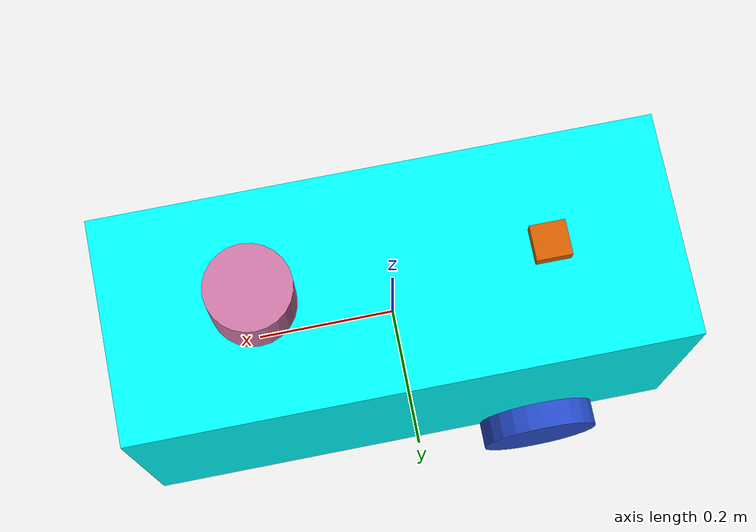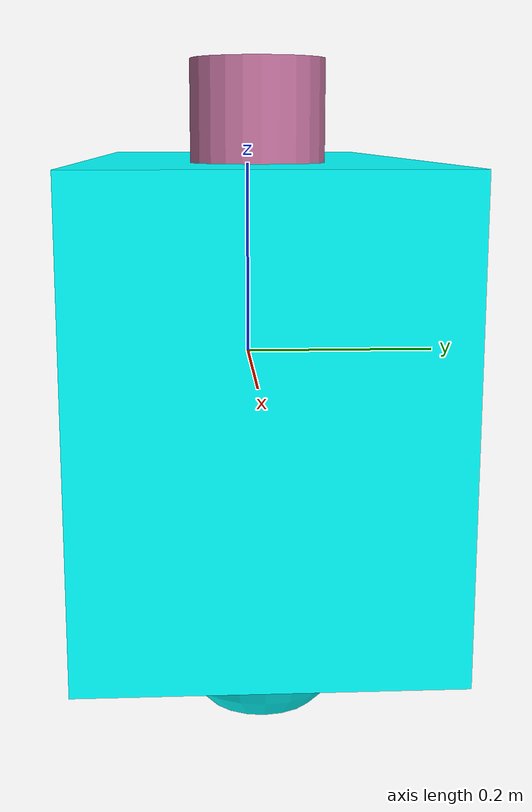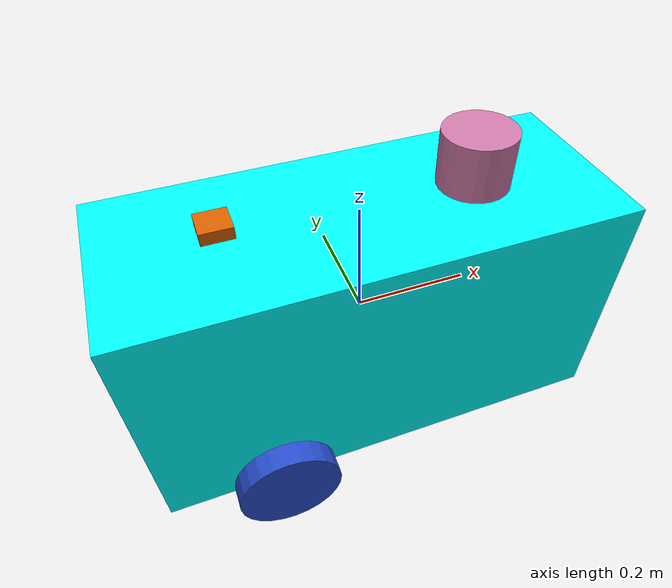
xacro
<?xml version="1.0"?>

<robot name="sam_bot" xmlns:xacro="http://ros.org/wiki/xacro">

  <!-- Define robot constants -->

  <xacro:property name="base_width" value="0.32"/>
  <xacro:property name="base_length" value="0.8"/>
  <xacro:property name="base_height" value="0.41"/>

  <xacro:property name="wheel_radius" value="0.09"/>
  <xacro:property name="wheel_mass" value="1"/>
  <xacro:property name="wheel_width" value="0.04"/>
  <xacro:property name="wheel_ygap" value="0.04"/>
  <xacro:property name="wheel_zoff" value="0.20"/>
  <xacro:property name="wheel_xoff" value="0.20"/>

  <xacro:property name="caster_xoff" value="0.25"/>

  <!-- Define some commonly used intertial properties  -->
  <xacro:macro name="box_inertia" params="m w h d">
    <inertial>
      <origin xyz="0 0 0" rpy="${pi/2} 0 ${pi/2}"/>
      <mass value="${m}"/>
      <inertia ixx="${(m/12) * (h*h + d*d)}" ixy="0.0" ixz="0.0" iyy="${(m/12) * (w*w + d*d)}" iyz="0.0" izz="${(m/12) * (w*w + h*h)}"/>
    </inertial>
  </xacro:macro>

  <xacro:macro name="cylinder_inertia" params="m r h">
    <inertial>
      <origin xyz="0 0 0" rpy="${pi/2} 0 0" />
      <mass value="${m}"/>
      <inertia ixx="${(m/12) * (3*r*r + h*h)}" ixy = "0" ixz = "0" iyy="${(m/12) * (3*r*r + h*h)}" iyz = "0" izz="${(m/2) * (r*r)}"/>
    </inertial>
  </xacro:macro>

  <xacro:macro name="sphere_inertia" params="m r">
    <inertial>
      <mass value="${m}"/>
      <inertia ixx="${(2/5) * m * (r*r)}" ixy="0.0" ixz="0.0" iyy="${(2/5) * m * (r*r)}" iyz="0.0" izz="${(2/5) * m * (r*r)}"/>
    </inertial>
  </xacro:macro>

  <!-- Robot Base -->
  <link name="base_link">
    <visual>
      <geometry>
        <box size="${base_length} ${base_width} ${base_height}"/>
      </geometry>
      <material name="Cyan">
        <color rgba="0 1.0 1.0 1.0"/>
      </material>
    </visual>

    <collision>
      <geometry>
        <box size="${base_length} ${base_width} ${base_height}"/>
      </geometry>
    </collision>

    <xacro:box_inertia m="1" w="${base_width}" d="${base_length}" h="${base_height}"/>
  </link>

   <!-- Robot Footprint -->
  <link name="base_footprint">
  	<xacro:box_inertia m="0" w="0" d="0" h="0"/>
  </link>

  <joint name="base_joint" type="fixed">
    <parent link="base_link"/>
    <child link="base_footprint"/>
    <origin xyz="0.0 0.0 ${-(wheel_radius+wheel_zoff)}" rpy="0 0 0"/>
  </joint>

    <joint name="left_wheel_joint" type="continuous">
      <parent link="base_link"/>
      <child link="left_wheel"/>
      <origin xyz="${-wheel_xoff} ${(base_width/2+wheel_ygap/2)} ${-wheel_zoff}" rpy="-${pi/2} 0 0" />
      <axis xyz="0 0 1"/>
  </joint>

  <link name="left_wheel">
      <visual>
          <geometry>
              <cylinder radius="${wheel_radius}" length="${wheel_width}"/>
          </geometry>
          <material name="blue"/>
      </visual>
      <collision>
          <geometry>
              <sphere radius="${wheel_radius}"/>
          </geometry>
      </collision>
      <xacro:cylinder_inertia m="${wheel_mass}" h="${wheel_width}" r="${wheel_radius}"/>
  </link>

  <gazebo reference="left_wheel">
      <material>Gazebo/Blue</material>
  </gazebo>

  <!-- RIGHT WHEEL LINK -->

  <joint name="right_wheel_joint" type="continuous">
      <parent link="base_link"/>
      <child link="right_wheel"/>
      <origin xyz="${-wheel_xoff} ${-(base_width/2+wheel_ygap/2)} ${-wheel_zoff}" rpy="${pi/2} 0 0" />
      <axis xyz="0 0 -1"/>
  </joint>

  <link name="right_wheel">
      <visual>
          <geometry>
              <cylinder radius="${wheel_radius}" length="${wheel_width}"/>
          </geometry>
          <material name="blue"/>
      </visual>
      <collision>
          <geometry>
              <sphere radius="${wheel_radius}"/>
          </geometry>
      </collision>
      <xacro:cylinder_inertia m="${wheel_mass}" h="${wheel_width}" r="${wheel_radius}"/>
  </link>

  <gazebo reference="right_wheel">
      <material>Gazebo/Blue</material>
  </gazebo>

    <!-- caster -->

    <link name="front_caster">
      <visual>
        <geometry>
          <sphere radius="${(wheel_radius+wheel_zoff-(base_height/2))}"/>
        </geometry>
        <material name="Cyan">
          <color rgba="0 1.0 1.0 1.0"/>
        </material>
      </visual>

      <collision>
        <origin xyz="0 0 0" rpy="0 0 0"/>
        <geometry>
          <sphere radius="${(wheel_radius+wheel_zoff-(base_height/2))}"/>
        </geometry>
      </collision>

      <xacro:sphere_inertia m="0.5" r="${(wheel_radius+wheel_zoff-(base_height/2))}"/>
    </link>

    <joint name="caster_joint" type="fixed">
      <parent link="base_link"/>
      <child link="front_caster"/>
      <origin xyz="${caster_xoff} 0.0 ${-(base_height/2)}" rpy="0 0 0"/>
    </joint>

  <!-- Small wheels -->

  <link name="imu_link">
    <visual>
      <geometry>
        <box size="0.05 0.05 0.02"/>
      </geometry>
    </visual>

    <collision>
      <geometry>
        <box size="0.05 0.05 0.02"/>
      </geometry>
    </collision>

    <xacro:box_inertia m="0.05" w="0.05" d="0.05" h="0.02"/>
  </link>

  <joint name="imu_joint" type="fixed">
    <parent link="base_link"/>
    <child link="imu_link"/>
    <origin xyz="-0.2175 0 0.23"/>
  </joint>

  <gazebo reference="imu_link">
  <sensor name="imu_sensor" type="imu">
   <plugin filename="libgazebo_ros_imu_sensor.so" name="imu_plugin">
      <ros>
        <namespace>/demo</namespace>
        <remapping>~/out:=imu</remapping>
      </ros>
      <initial_orientation_as_reference>false</initial_orientation_as_reference>
    </plugin>
    <always_on>true</always_on>
    <update_rate>100</update_rate>
    <visualize>true</visualize>
    <imu>
      <angular_velocity>
        <x>
          <noise type="gaussian">
            <mean>0.0</mean>
            <stddev>2e-4</stddev>
            <bias_mean>0.0000075</bias_mean>
            <bias_stddev>0.0000008</bias_stddev>
          </noise>
        </x>
        <y>
          <noise type="gaussian">
            <mean>0.0</mean>
            <stddev>2e-4</stddev>
            <bias_mean>0.0000075</bias_mean>
            <bias_stddev>0.0000008</bias_stddev>
          </noise>
        </y>
        <z>
          <noise type="gaussian">
            <mean>0.0</mean>
            <stddev>2e-4</stddev>
            <bias_mean>0.0000075</bias_mean>
            <bias_stddev>0.0000008</bias_stddev>
          </noise>
        </z>
      </angular_velocity>
      <linear_acceleration>
        <x>
          <noise type="gaussian">
            <mean>0.0</mean>
            <stddev>1.7e-2</stddev>
            <bias_mean>0.1</bias_mean>
            <bias_stddev>0.001</bias_stddev>
          </noise>
        </x>
        <y>
          <noise type="gaussian">
            <mean>0.0</mean>
            <stddev>1.7e-2</stddev>
            <bias_mean>0.1</bias_mean>
            <bias_stddev>0.001</bias_stddev>
          </noise>
        </y>
        <z>
          <noise type="gaussian">
            <mean>0.0</mean>
            <stddev>1.7e-2</stddev>
            <bias_mean>0.1</bias_mean>
            <bias_stddev>0.001</bias_stddev>
          </noise>
        </z>
      </linear_acceleration>
    </imu>
  </sensor>
</gazebo>

 <link name="lidar_link">
    <inertial>
      <origin xyz="0 0 0" rpy="0 0 0"/>
      <mass value="0.125"/>
      <inertia ixx="0.001"  ixy="0"  ixz="0" iyy="0.001" iyz="0" izz="0.001" />
    </inertial>

    <collision>
      <origin xyz="0 0 0" rpy="0 0 0"/>
      <geometry>
         <cylinder radius="0.06" length="0.09"/>
      </geometry>
    </collision>

    <visual>
      <origin xyz="0 0 0" rpy="0 0 0"/>
      <geometry>
         <cylinder radius="0.06" length="0.09"/>
      </geometry>
    </visual>
  </link>

  <joint name="lidar_joint" type="fixed">
    <parent link="base_link"/>
    <child link="lidar_link"/>
    <origin xyz="0.1925 0 0.25" rpy="0 0 0"/>
  </joint>

  <gazebo reference="lidar_link">
    <sensor name="lidar" type="ray">
      <always_on>true</always_on>
      <visualize>true</visualize>
      <update_rate>5</update_rate>
      <ray>
        <scan>
          <horizontal>
            <samples>360</samples>
            <resolution>1.000000</resolution>
            <min_angle>0.000000</min_angle>
            <max_angle>6.280000</max_angle>
          </horizontal>
        </scan>
        <range>
          <min>0.120000</min>
          <max>3.5</max>
          <resolution>0.015000</resolution>
        </range>
        <noise>
          <type>gaussian</type>
          <mean>0.0</mean>
          <stddev>0.01</stddev>
        </noise>
      </ray>
      <plugin name="scan" filename="libgazebo_ros_ray_sensor.so">
        <ros>
          <remapping>~/out:=scan</remapping>
        </ros>
        <output_type>sensor_msgs/LaserScan</output_type>
        <frame_name>lidar_link</frame_name>
      </plugin>
    </sensor>
  </gazebo>

</robot>
